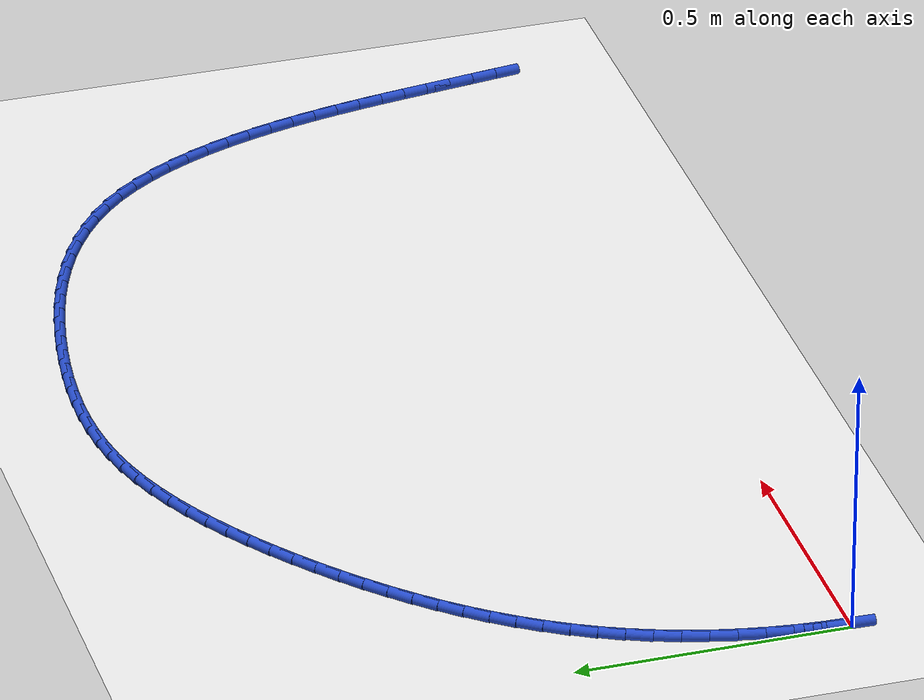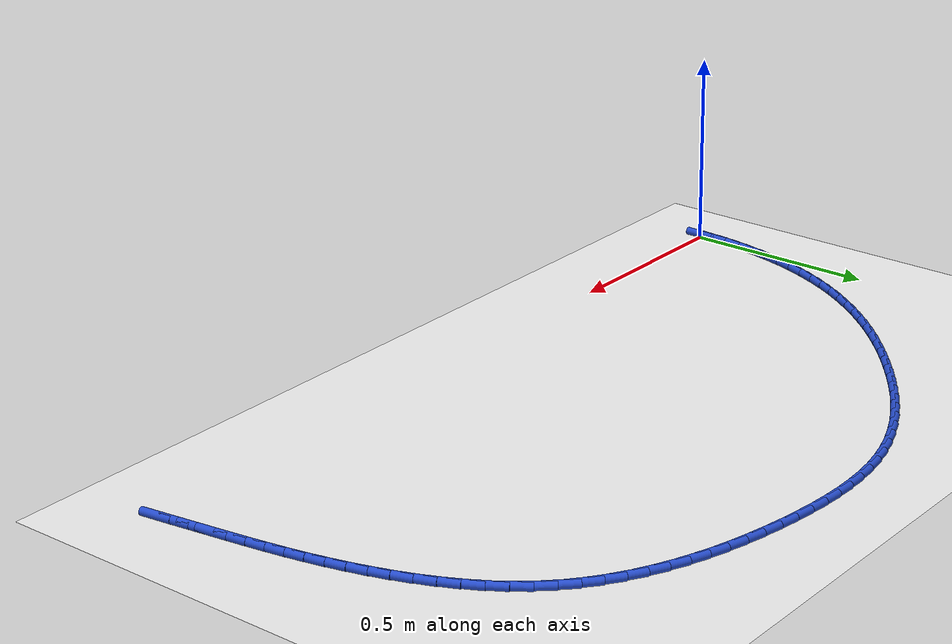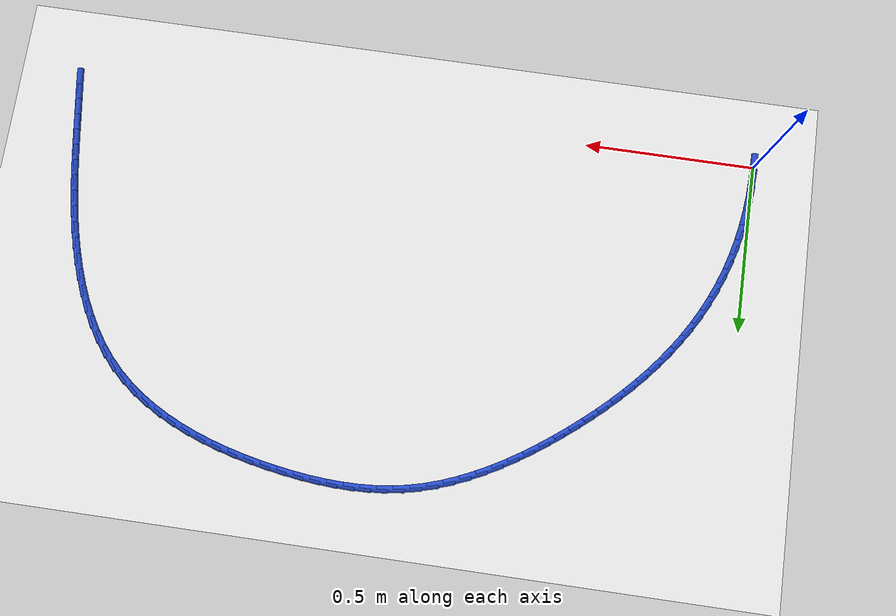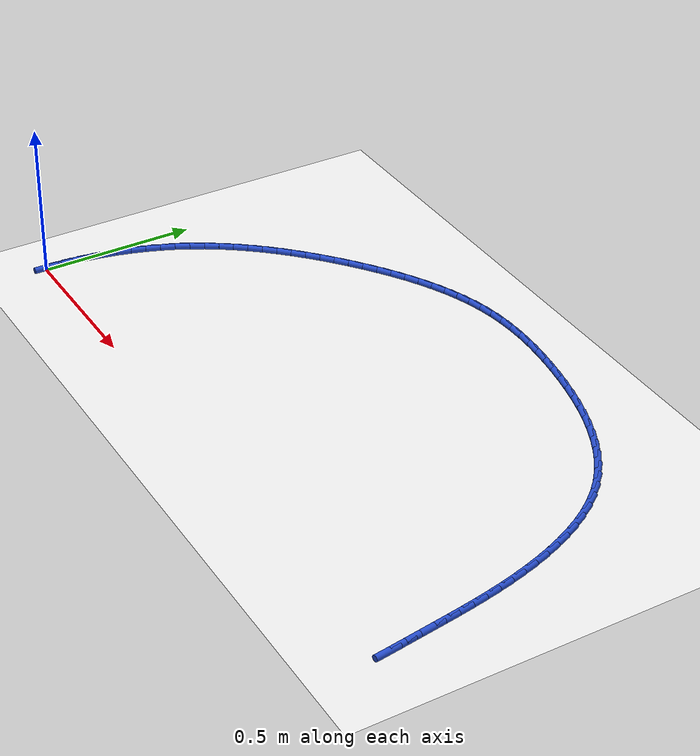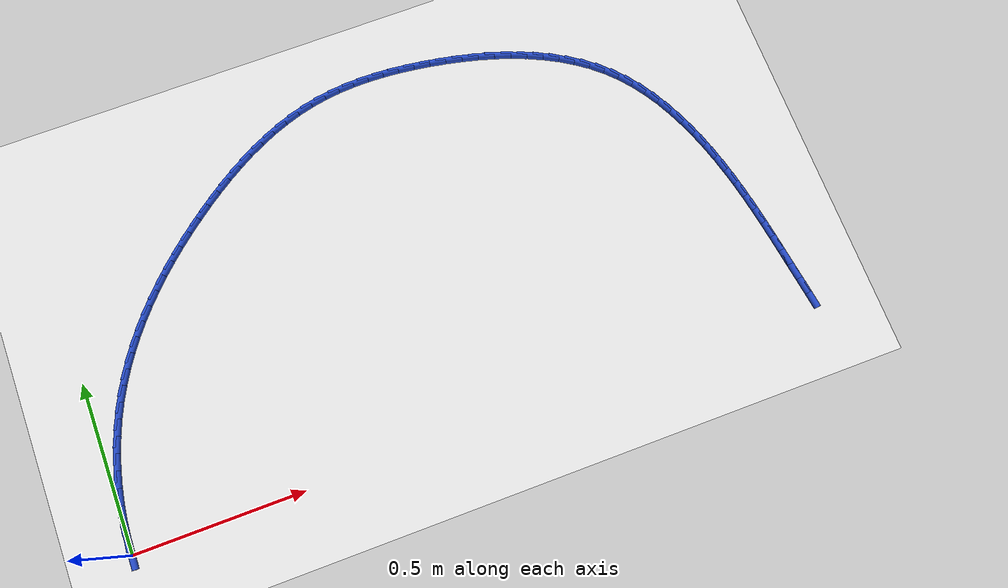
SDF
<sdf version="1.6">
 <world name="default">
  <model name="ground_plane">
   <static>1</static>
   <link name="link">
    <collision name="collision">
     <geometry><plane><normal>0 0 1</normal><size>100 100</size></plane></geometry>
     <surface><friction><ode><mu>100</mu><mu2>50</mu2></ode></friction></surface>
    </collision>
    <visual name="visual">
     <cast_shadows>0</cast_shadows>
     <geometry><plane><normal>0 0 1</normal><size>100 100</size></plane></geometry>
     <material>
      <script><uri>file://media/materials/scripts/gazebo.material</uri><name>Gazebo/WhiteGlow</name></script>
     </material>
    </visual>
   </link>
  </model>
  <model name="line">
   <link name="link_0">
    <pose>-1.3877787807814457e-17 -2.7755575615628914e-17 0.01 0 1.57 1.5439862479537985</pose>
    <collision name="collision">
     <geometry><cylinder><radius>0.01</radius><length>0.08</length></cylinder></geometry>
    </collision>
    <visual name="visual">
     <material>
      <script><name>Gazebo/Blue</name><uri>file://media/materials/scripts/gazebo.material</uri></script>
     </material>
     <geometry><cylinder><radius>0.01</radius><length>0.08</length></cylinder></geometry>
    </visual>
   </link>
   <link name="link_1">
    <pose>0.0013000955071772464 0.04848117029403217 0.01 0 1.57 1.49732978394675</pose>
    <collision name="collision">
     <geometry><cylinder><radius>0.01</radius><length>0.08</length></cylinder></geometry>
    </collision>
    <visual name="visual">
     <material>
      <script><name>Gazebo/Blue</name><uri>file://media/materials/scripts/gazebo.material</uri></script>
     </material>
     <geometry><cylinder><radius>0.01</radius><length>0.08</length></cylinder></geometry>
    </visual>
   </link>
   <link name="link_2">
    <pose>0.004854775804561397 0.0967791110049405 0.01 0 1.57 1.450515364279473</pose>
    <collision name="collision">
     <geometry><cylinder><radius>0.01</radius><length>0.08</length></cylinder></geometry>
    </collision>
    <visual name="visual">
     <material>
      <script><name>Gazebo/Blue</name><uri>file://media/materials/scripts/gazebo.material</uri></script>
     </material>
     <geometry><cylinder><radius>0.01</radius><length>0.08</length></cylinder></geometry>
    </visual>
   </link>
   <link name="link_3">
    <pose>0.010655439018264075 0.1447722626850268 0.01 0 1.57 1.403393478930387</pose>
    <collision name="collision">
     <geometry><cylinder><radius>0.01</radius><length>0.08</length></cylinder></geometry>
    </collision>
    <visual name="visual">
     <material>
      <script><name>Gazebo/Blue</name><uri>file://media/materials/scripts/gazebo.material</uri></script>
     </material>
     <geometry><cylinder><radius>0.01</radius><length>0.08</length></cylinder></geometry>
    </visual>
   </link>
   <link name="link_4">
    <pose>0.018693483274396905 0.1923390658865928 0.01 0 1.57 1.35581536525314</pose>
    <collision name="collision">
     <geometry><cylinder><radius>0.01</radius><length>0.08</length></cylinder></geometry>
    </collision>
    <visual name="visual">
     <material>
      <script><name>Gazebo/Blue</name><uri>file://media/materials/scripts/gazebo.material</uri></script>
     </material>
     <geometry><cylinder><radius>0.01</radius><length>0.08</length></cylinder></geometry>
    </visual>
   </link>
   <link name="link_5">
    <pose>0.028960306699071535 0.23935796116194058 0.01 0 1.57 1.3076344582694799</pose>
    <collision name="collision">
     <geometry><cylinder><radius>0.01</radius><length>0.08</length></cylinder></geometry>
    </collision>
    <visual name="visual">
     <material>
      <script><name>Gazebo/Blue</name><uri>file://media/materials/scripts/gazebo.material</uri></script>
     </material>
     <geometry><cylinder><radius>0.01</radius><length>0.08</length></cylinder></geometry>
    </visual>
   </link>
   <link name="link_6">
    <pose>0.041447307418399575 0.2857073890633719 0.01 0 1.57 1.2587081270434302</pose>
    <collision name="collision">
     <geometry><cylinder><radius>0.01</radius><length>0.08</length></cylinder></geometry>
    </collision>
    <visual name="visual">
     <material>
      <script><name>Gazebo/Blue</name><uri>file://media/materials/scripts/gazebo.material</uri></script>
     </material>
     <geometry><cylinder><radius>0.01</radius><length>0.08</length></cylinder></geometry>
    </visual>
   </link>
   <link name="link_7">
    <pose>0.056145883558492655 0.33126579014318835 0.01 0 1.57 1.2088997947003792</pose>
    <collision name="collision">
     <geometry><cylinder><radius>0.01</radius><length>0.08</length></cylinder></geometry>
    </collision>
    <visual name="visual">
     <material>
      <script><name>Gazebo/Blue</name><uri>file://media/materials/scripts/gazebo.material</uri></script>
     </material>
     <geometry><cylinder><radius>0.01</radius><length>0.08</length></cylinder></geometry>
    </visual>
   </link>
   <link name="link_8">
    <pose>0.07304743324546242 0.3759116049536922 0.01 0 1.57 1.158081530618101</pose>
    <collision name="collision">
     <geometry><cylinder><radius>0.01</radius><length>0.08</length></cylinder></geometry>
    </collision>
    <visual name="visual">
     <material>
      <script><name>Gazebo/Blue</name><uri>file://media/materials/scripts/gazebo.material</uri></script>
     </material>
     <geometry><cylinder><radius>0.01</radius><length>0.08</length></cylinder></geometry>
    </visual>
   </link>
   <link name="link_9">
    <pose>0.09214335460542052 0.4195232740471851 0.01 0 1.57 1.1063028263556682</pose>
    <collision name="collision">
     <geometry><cylinder><radius>0.01</radius><length>0.08</length></cylinder></geometry>
    </collision>
    <visual name="visual">
     <material>
      <script><name>Gazebo/Blue</name><uri>file://media/materials/scripts/gazebo.material</uri></script>
     </material>
     <geometry><cylinder><radius>0.01</radius><length>0.08</length></cylinder></geometry>
    </visual>
   </link>
   <link name="link_10">
    <pose>0.1134197853109428 0.46198629966658694 0.01 0 1.57 1.0554651047905392</pose>
    <collision name="collision">
     <geometry><cylinder><radius>0.01</radius><length>0.08</length></cylinder></geometry>
    </collision>
    <visual name="visual">
     <material>
      <script><name>Gazebo/Blue</name><uri>file://media/materials/scripts/gazebo.material</uri></script>
     </material>
     <geometry><cylinder><radius>0.01</radius><length>0.08</length></cylinder></geometry>
    </visual>
   </link>
   <link name="link_11">
    <pose>0.13680132337337977 0.503268795572125 0.01 0 1.57 1.0069436426508978</pose>
    <collision name="collision">
     <geometry><cylinder><radius>0.01</radius><length>0.08</length></cylinder></geometry>
    </collision>
    <visual name="visual">
     <material>
      <script><name>Gazebo/Blue</name><uri>file://media/materials/scripts/gazebo.material</uri></script>
     </material>
     <geometry><cylinder><radius>0.01</radius><length>0.08</length></cylinder></geometry>
    </visual>
   </link>
   <link name="link_12">
    <pose>0.1621726793115521 0.543392420932205 0.01 0 1.57 0.9608611292791025</pose>
    <collision name="collision">
     <geometry><cylinder><radius>0.01</radius><length>0.08</length></cylinder></geometry>
    </collision>
    <visual name="visual">
     <material>
      <script><name>Gazebo/Blue</name><uri>file://media/materials/scripts/gazebo.material</uri></script>
     </material>
     <geometry><cylinder><radius>0.01</radius><length>0.08</length></cylinder></geometry>
    </visual>
   </link>
   <link name="link_13">
    <pose>0.18941789051490968 0.5823797385314952 0.01 0 1.57 0.9172676235444962</pose>
    <collision name="collision">
     <geometry><cylinder><radius>0.01</radius><length>0.08</length></cylinder></geometry>
    </collision>
    <visual name="visual">
     <material>
      <script><name>Gazebo/Blue</name><uri>file://media/materials/scripts/gazebo.material</uri></script>
     </material>
     <geometry><cylinder><radius>0.01</radius><length>0.08</length></cylinder></geometry>
    </visual>
   </link>
   <link name="link_14">
    <pose>0.21842099437290244 0.6202533111546634 0.01 0 1.57 0.8761697022894857</pose>
    <collision name="collision">
     <geometry><cylinder><radius>0.01</radius><length>0.08</length></cylinder></geometry>
    </collision>
    <visual name="visual">
     <material>
      <script><name>Gazebo/Blue</name><uri>file://media/materials/scripts/gazebo.material</uri></script>
     </material>
     <geometry><cylinder><radius>0.01</radius><length>0.08</length></cylinder></geometry>
    </visual>
   </link>
   <link name="link_15">
    <pose>0.24906602827498026 0.6570357015863781 0.01 0 1.57 0.8375388492381575</pose>
    <collision name="collision">
     <geometry><cylinder><radius>0.01</radius><length>0.08</length></cylinder></geometry>
    </collision>
    <visual name="visual">
     <material>
      <script><name>Gazebo/Blue</name><uri>file://media/materials/scripts/gazebo.material</uri></script>
     </material>
     <geometry><cylinder><radius>0.01</radius><length>0.08</length></cylinder></geometry>
    </visual>
   </link>
   <link name="link_16">
    <pose>0.28123702961059305 0.6927494726113071 0.01 0 1.57 0.801319581556434</pose>
    <collision name="collision">
     <geometry><cylinder><radius>0.01</radius><length>0.08</length></cylinder></geometry>
    </collision>
    <visual name="visual">
     <material>
      <script><name>Gazebo/Blue</name><uri>file://media/materials/scripts/gazebo.material</uri></script>
     </material>
     <geometry><cylinder><radius>0.01</radius><length>0.08</length></cylinder></geometry>
    </visual>
   </link>
   <link name="link_17">
    <pose>0.31481803576919076 0.7274171870141186 0.01 0 1.57 0.767436859030929</pose>
    <collision name="collision">
     <geometry><cylinder><radius>0.01</radius><length>0.08</length></cylinder></geometry>
    </collision>
    <visual name="visual">
     <material>
      <script><name>Gazebo/Blue</name><uri>file://media/materials/scripts/gazebo.material</uri></script>
     </material>
     <geometry><cylinder><radius>0.01</radius><length>0.08</length></cylinder></geometry>
    </visual>
   </link>
   <link name="link_18">
    <pose>0.3496930841402231 0.7610614075794808 0.01 0 1.57 0.7358025313461442</pose>
    <collision name="collision">
     <geometry><cylinder><radius>0.01</radius><length>0.08</length></cylinder></geometry>
    </collision>
    <visual name="visual">
     <material>
      <script><name>Gazebo/Blue</name><uri>file://media/materials/scripts/gazebo.material</uri></script>
     </material>
     <geometry><cylinder><radius>0.01</radius><length>0.08</length></cylinder></geometry>
    </visual>
   </link>
   <link name="link_19">
    <pose>0.3857462121131401 0.7937046970920614 0.01 0 1.57 0.7063207410016091</pose>
    <collision name="collision">
     <geometry><cylinder><radius>0.01</radius><length>0.08</length></cylinder></geometry>
    </collision>
    <visual name="visual">
     <material>
      <script><name>Gazebo/Blue</name><uri>file://media/materials/scripts/gazebo.material</uri></script>
     </material>
     <geometry><cylinder><radius>0.01</radius><length>0.08</length></cylinder></geometry>
    </visual>
   </link>
   <link name="link_20">
    <pose>0.42286145707739187 0.8253696183365292 0.01 0 1.57 0.6788923109221581</pose>
    <collision name="collision">
     <geometry><cylinder><radius>0.01</radius><length>0.08</length></cylinder></geometry>
    </collision>
    <visual name="visual">
     <material>
      <script><name>Gazebo/Blue</name><uri>file://media/materials/scripts/gazebo.material</uri></script>
     </material>
     <geometry><cylinder><radius>0.01</radius><length>0.08</length></cylinder></geometry>
    </visual>
   </link>
   <link name="link_21">
    <pose>0.4609228564224279 0.8560787340975516 0.01 0 1.57 0.6528561740474497</pose>
    <collision name="collision">
     <geometry><cylinder><radius>0.01</radius><length>0.08</length></cylinder></geometry>
    </collision>
    <visual name="visual">
     <material>
      <script><name>Gazebo/Blue</name><uri>file://media/materials/scripts/gazebo.material</uri></script>
     </material>
     <geometry><cylinder><radius>0.01</radius><length>0.08</length></cylinder></geometry>
    </visual>
   </link>
   <link name="link_22">
    <pose>0.4998251105921384 0.8858281050375019 0.01 0 1.57 0.6246889999365038</pose>
    <collision name="collision">
     <geometry><cylinder><radius>0.01</radius><length>0.08</length></cylinder></geometry>
    </collision>
    <visual name="visual">
     <material>
      <script><name>Gazebo/Blue</name><uri>file://media/materials/scripts/gazebo.material</uri></script>
     </material>
     <geometry><cylinder><radius>0.01</radius><length>0.08</length></cylinder></geometry>
    </visual>
   </link>
   <link name="link_23">
    <pose>0.5395272795234832 0.9144538317279781 0.01 0 1.57 0.5929173329271502</pose>
    <collision name="collision">
     <geometry><cylinder><radius>0.01</radius><length>0.08</length></cylinder></geometry>
    </collision>
    <visual name="visual">
     <material>
      <script><name>Gazebo/Blue</name><uri>file://media/materials/scripts/gazebo.material</uri></script>
     </material>
     <geometry><cylinder><radius>0.01</radius><length>0.08</length></cylinder></geometry>
    </visual>
   </link>
   <link name="link_24">
    <pose>0.5800124497341687 0.9417322987009699 0.01 0 1.57 0.5572982903849244</pose>
    <collision name="collision">
     <geometry><cylinder><radius>0.01</radius><length>0.08</length></cylinder></geometry>
    </collision>
    <visual name="visual">
     <material>
      <script><name>Gazebo/Blue</name><uri>file://media/materials/scripts/gazebo.material</uri></script>
     </material>
     <geometry><cylinder><radius>0.01</radius><length>0.08</length></cylinder></geometry>
    </visual>
   </link>
   <link name="link_25">
    <pose>0.6212637490057964 0.9674397879305382 0.01 0 1.57 0.5175737755736487</pose>
    <collision name="collision">
     <geometry><cylinder><radius>0.01</radius><length>0.08</length></cylinder></geometry>
    </collision>
    <visual name="visual">
     <material>
      <script><name>Gazebo/Blue</name><uri>file://media/materials/scripts/gazebo.material</uri></script>
     </material>
     <geometry><cylinder><radius>0.01</radius><length>0.08</length></cylinder></geometry>
    </visual>
   </link>
   <link name="link_26">
    <pose>0.6632643051199675 0.991352581390743 0.01 0 1.57 0.4734816439089766</pose>
    <collision name="collision">
     <geometry><cylinder><radius>0.01</radius><length>0.08</length></cylinder></geometry>
    </collision>
    <visual name="visual">
     <material>
      <script><name>Gazebo/Blue</name><uri>file://media/materials/scripts/gazebo.material</uri></script>
     </material>
     <geometry><cylinder><radius>0.01</radius><length>0.08</length></cylinder></geometry>
    </visual>
   </link>
   <link name="link_27">
    <pose>0.7059972458582832 1.0132469610556454 0.01 0 1.57 0.42477475289719163</pose>
    <collision name="collision">
     <geometry><cylinder><radius>0.01</radius><length>0.08</length></cylinder></geometry>
    </collision>
    <visual name="visual">
     <material>
      <script><name>Gazebo/Blue</name><uri>file://media/materials/scripts/gazebo.material</uri></script>
     </material>
     <geometry><cylinder><radius>0.01</radius><length>0.08</length></cylinder></geometry>
    </visual>
   </link>
   <link name="link_28">
    <pose>0.7494456990023451 1.0328992088993056 0.01 0 1.57 0.3712470565876326</pose>
    <collision name="collision">
     <geometry><cylinder><radius>0.01</radius><length>0.08</length></cylinder></geometry>
    </collision>
    <visual name="visual">
     <material>
      <script><name>Gazebo/Blue</name><uri>file://media/materials/scripts/gazebo.material</uri></script>
     </material>
     <geometry><cylinder><radius>0.01</radius><length>0.08</length></cylinder></geometry>
    </visual>
   </link>
   <link name="link_29">
    <pose>0.7935927923337546 1.050085606895784 0.01 0 1.57 0.31276744081775637</pose>
    <collision name="collision">
     <geometry><cylinder><radius>0.01</radius><length>0.08</length></cylinder></geometry>
    </collision>
    <visual name="visual">
     <material>
      <script><name>Gazebo/Blue</name><uri>file://media/materials/scripts/gazebo.material</uri></script>
     </material>
     <geometry><cylinder><radius>0.01</radius><length>0.08</length></cylinder></geometry>
    </visual>
   </link>
   <link name="link_30">
    <pose>0.8384216536341128 1.0645824370191415 0.01 0 1.57 0.24932057655634146</pose>
    <collision name="collision">
     <geometry><cylinder><radius>0.01</radius><length>0.08</length></cylinder></geometry>
    </collision>
    <visual name="visual">
     <material>
      <script><name>Gazebo/Blue</name><uri>file://media/materials/scripts/gazebo.material</uri></script>
     </material>
     <geometry><cylinder><radius>0.01</radius><length>0.08</length></cylinder></geometry>
    </visual>
   </link>
   <link name="link_31">
    <pose>0.8839154106850214 1.0761659812434385 0.01 0 1.57 0.18257393777778924</pose>
    <collision name="collision">
     <geometry><cylinder><radius>0.01</radius><length>0.08</length></cylinder></geometry>
    </collision>
    <visual name="visual">
     <material>
      <script><name>Gazebo/Blue</name><uri>file://media/materials/scripts/gazebo.material</uri></script>
     </material>
     <geometry><cylinder><radius>0.01</radius><length>0.08</length></cylinder></geometry>
    </visual>
   </link>
   <link name="link_32">
    <pose>0.9300488244824214 1.0846835910959602 0.01 0 1.57 0.11912959833834877</pose>
    <collision name="collision">
     <geometry><cylinder><radius>0.01</radius><length>0.08</length></cylinder></geometry>
    </collision>
    <visual name="visual">
     <material>
      <script><name>Gazebo/Blue</name><uri>file://media/materials/scripts/gazebo.material</uri></script>
     </material>
     <geometry><cylinder><radius>0.01</radius><length>0.08</length></cylinder></geometry>
    </visual>
   </link>
   <link name="link_33">
    <pose>0.9767622328994956 1.090275016649207 0.01 0 1.57 0.060913125359275754</pose>
    <collision name="collision">
     <geometry><cylinder><radius>0.01</radius><length>0.08</length></cylinder></geometry>
    </collision>
    <visual name="visual">
     <material>
      <script><name>Gazebo/Blue</name><uri>file://media/materials/scripts/gazebo.material</uri></script>
     </material>
     <geometry><cylinder><radius>0.01</radius><length>0.08</length></cylinder></geometry>
    </visual>
   </link>
   <link name="link_34">
    <pose>1.023987122246294 1.093155195349033 0.01 0 1.57 0.00805282810111793</pose>
    <collision name="collision">
     <geometry><cylinder><radius>0.01</radius><length>0.08</length></cylinder></geometry>
    </collision>
    <visual name="visual">
     <material>
      <script><name>Gazebo/Blue</name><uri>file://media/materials/scripts/gazebo.material</uri></script>
     </material>
     <geometry><cylinder><radius>0.01</radius><length>0.08</length></cylinder></geometry>
    </visual>
   </link>
   <link name="link_35">
    <pose>1.071654978825745 1.093539064701777 0.01 0 1.57 -0.039475968621177415</pose>
    <collision name="collision">
     <geometry><cylinder><radius>0.01</radius><length>0.08</length></cylinder></geometry>
    </collision>
    <visual name="visual">
     <material>
      <script><name>Gazebo/Blue</name><uri>file://media/materials/scripts/gazebo.material</uri></script>
     </material>
     <geometry><cylinder><radius>0.01</radius><length>0.08</length></cylinder></geometry>
    </visual>
   </link>
   <link name="link_36">
    <pose>1.1196972889407786 1.091641562213777 0.01 0 1.57 -0.08180421731407035</pose>
    <collision name="collision">
     <geometry><cylinder><radius>0.01</radius><length>0.08</length></cylinder></geometry>
    </collision>
    <visual name="visual">
     <material>
      <script><name>Gazebo/Blue</name><uri>file://media/materials/scripts/gazebo.material</uri></script>
     </material>
     <geometry><cylinder><radius>0.01</radius><length>0.08</length></cylinder></geometry>
    </visual>
   </link>
   <link name="link_37">
    <pose>1.1680455388943238 1.0876776253913716 0.01 0 1.57 -0.11912765942808072</pose>
    <collision name="collision">
     <geometry><cylinder><radius>0.01</radius><length>0.08</length></cylinder></geometry>
    </collision>
    <visual name="visual">
     <material>
      <script><name>Gazebo/Blue</name><uri>file://media/materials/scripts/gazebo.material</uri></script>
     </material>
     <geometry><cylinder><radius>0.01</radius><length>0.08</length></cylinder></geometry>
    </visual>
   </link>
   <link name="link_38">
    <pose>1.2166312149893093 1.081862191740899 0.01 0 1.57 -0.15167389560832728</pose>
    <collision name="collision">
     <geometry><cylinder><radius>0.01</radius><length>0.08</length></cylinder></geometry>
    </collision>
    <visual name="visual">
     <material>
      <script><name>Gazebo/Blue</name><uri>file://media/materials/scripts/gazebo.material</uri></script>
     </material>
     <geometry><cylinder><radius>0.01</radius><length>0.08</length></cylinder></geometry>
    </visual>
   </link>
   <link name="link_39">
    <pose>1.2653857844287881 1.0744101638715478 0.01 0 1.57 -0.1812845392434964</pose>
    <collision name="collision">
     <geometry><cylinder><radius>0.01</radius><length>0.08</length></cylinder></geometry>
    </collision>
    <visual name="visual">
     <material>
      <script><name>Gazebo/Blue</name><uri>file://media/materials/scripts/gazebo.material</uri></script>
     </material>
     <geometry><cylinder><radius>0.01</radius><length>0.08</length></cylinder></geometry>
    </visual>
   </link>
   <link name="link_40">
    <pose>1.3142003050210591 1.065462612882846 0.01 0 1.57 -0.21323153890450583</pose>
    <collision name="collision">
     <geometry><cylinder><radius>0.01</radius><length>0.08</length></cylinder></geometry>
    </collision>
    <visual name="visual">
     <material>
      <script><name>Gazebo/Blue</name><uri>file://media/materials/scripts/gazebo.material</uri></script>
     </material>
     <geometry><cylinder><radius>0.01</radius><length>0.08</length></cylinder></geometry>
    </visual>
   </link>
   <link name="link_41">
    <pose>1.3628401442285534 1.0549309625845849 0.01 0 1.57 -0.2488271544679976</pose>
    <collision name="collision">
     <geometry><cylinder><radius>0.01</radius><length>0.08</length></cylinder></geometry>
    </collision>
    <visual name="visual">
     <material>
      <script><name>Gazebo/Blue</name><uri>file://media/materials/scripts/gazebo.material</uri></script>
     </material>
     <geometry><cylinder><radius>0.01</radius><length>0.08</length></cylinder></geometry>
    </visual>
   </link>
   <link name="link_42">
    <pose>1.4110463025242534 1.0426821161589201 0.01 0 1.57 -0.28846309744115495</pose>
    <collision name="collision">
     <geometry><cylinder><radius>0.01</radius><length>0.08</length></cylinder></geometry>
    </collision>
    <visual name="visual">
     <material>
      <script><name>Gazebo/Blue</name><uri>file://media/materials/scripts/gazebo.material</uri></script>
     </material>
     <geometry><cylinder><radius>0.01</radius><length>0.08</length></cylinder></geometry>
    </visual>
   </link>
   <link name="link_43">
    <pose>1.4585597803811412 1.028582976788006 0.01 0 1.57 -0.3325725751890111</pose>
    <collision name="collision">
     <geometry><cylinder><radius>0.01</radius><length>0.08</length></cylinder></geometry>
    </collision>
    <visual name="visual">
     <material>
      <script><name>Gazebo/Blue</name><uri>file://media/materials/scripts/gazebo.material</uri></script>
     </material>
     <geometry><cylinder><radius>0.01</radius><length>0.08</length></cylinder></geometry>
    </visual>
   </link>
   <link name="link_44">
    <pose>1.5051215782722 1.0125004476539972 0.01 0 1.57 -0.38161919347276557</pose>
    <collision name="collision">
     <geometry><cylinder><radius>0.01</radius><length>0.08</length></cylinder></geometry>
    </collision>
    <visual name="visual">
     <material>
      <script><name>Gazebo/Blue</name><uri>file://media/materials/scripts/gazebo.material</uri></script>
     </material>
     <geometry><cylinder><radius>0.01</radius><length>0.08</length></cylinder></geometry>
    </visual>
   </link>
   <link name="link_45">
    <pose>1.5504726966704117 0.994301431939048 0.01 0 1.57 -0.4360767356400772</pose>
    <collision name="collision">
     <geometry><cylinder><radius>0.01</radius><length>0.08</length></cylinder></geometry>
    </collision>
    <visual name="visual">
     <material>
      <script><name>Gazebo/Blue</name><uri>file://media/materials/scripts/gazebo.material</uri></script>
     </material>
     <geometry><cylinder><radius>0.01</radius><length>0.08</length></cylinder></geometry>
    </visual>
   </link>
   <link name="link_46">
    <pose>1.5943541360487585 0.9738528328253133 0.01 0 1.57 -0.49639586184257994</pose>
    <collision name="collision">
     <geometry><cylinder><radius>0.01</radius><length>0.08</length></cylinder></geometry>
    </collision>
    <visual name="visual">
     <material>
      <script><name>Gazebo/Blue</name><uri>file://media/materials/scripts/gazebo.material</uri></script>
     </material>
     <geometry><cylinder><radius>0.01</radius><length>0.08</length></cylinder></geometry>
    </visual>
   </link>
   <link name="link_47">
    <pose>1.6365068968802234 0.9510215534949483 0.01 0 1.57 -0.5629537376569442</pose>
    <collision name="collision">
     <geometry><cylinder><radius>0.01</radius><length>0.08</length></cylinder></geometry>
    </collision>
    <visual name="visual">
     <material>
      <script><name>Gazebo/Blue</name><uri>file://media/materials/scripts/gazebo.material</uri></script>
     </material>
     <geometry><cylinder><radius>0.01</radius><length>0.08</length></cylinder></geometry>
    </visual>
   </link>
   <link name="link_48">
    <pose>1.676671979637788 0.9256744971301065 0.01 0 1.57 -0.6359841325285005</pose>
    <collision name="collision">
     <geometry><cylinder><radius>0.01</radius><length>0.08</length></cylinder></geometry>
    </collision>
    <visual name="visual">
     <material>
      <script><name>Gazebo/Blue</name><uri>file://media/materials/scripts/gazebo.material</uri></script>
     </material>
     <geometry><cylinder><radius>0.01</radius><length>0.08</length></cylinder></geometry>
    </visual>
   </link>
   <link name="link_49">
    <pose>1.714590384794435 0.8976785669129436 0.01 0 1.57 -0.7154898642995443</pose>
    <collision name="collision">
     <geometry><cylinder><radius>0.01</radius><length>0.08</length></cylinder></geometry>
    </collision>
    <visual name="visual">
     <material>
      <script><name>Gazebo/Blue</name><uri>file://media/materials/scripts/gazebo.material</uri></script>
     </material>
     <geometry><cylinder><radius>0.01</radius><length>0.08</length></cylinder></geometry>
    </visual>
   </link>
   <link name="link_50">
    <pose>1.750003112823147 0.8669006660256134 0.01 0 1.57 -0.8010830907051544</pose>
    <collision name="collision">
     <geometry><cylinder><radius>0.01</radius><length>0.08</length></cylinder></geometry>
    </collision>
    <visual name="visual">
     <material>
      <script><name>Gazebo/Blue</name><uri>file://media/materials/scripts/gazebo.material</uri></script>
     </material>
     <geometry><cylinder><radius>0.01</radius><length>0.08</length></cylinder></geometry>
    </visual>
   </link>
   <link name="link_51">
    <pose>1.7826530891976295 0.8332100570532648 0.01 0 1.57 -0.8872848594665548</pose>
    <collision name="collision">
     <geometry><cylinder><radius>0.01</radius><length>0.08</length></cylinder></geometry>
    </collision>
    <visual name="visual">
     <material>
      <script><name>Gazebo/Blue</name><uri>file://media/materials/scripts/gazebo.material</uri></script>
     </material>
     <geometry><cylinder><radius>0.01</radius><length>0.08</length></cylinder></geometry>
    </visual>
   </link>
   <link name="link_52">
    <pose>1.8124279688652252 0.7966533922044512 0.01 0 1.57 -0.9656628378489084</pose>
    <collision name="collision">
     <geometry><cylinder><radius>0.01</radius><length>0.08</length></cylinder></geometry>
    </collision>
    <visual name="visual">
     <material>
      <script><name>Gazebo/Blue</name><uri>file://media/materials/scripts/gazebo.material</uri></script>
     </material>
     <geometry><cylinder><radius>0.01</radius><length>0.08</length></cylinder></geometry>
    </visual>
   </link>
   <link name="link_53">
    <pose>1.8394583853857267 0.7575751336878254 0.01 0 1.57 -1.0356783595167642</pose>
    <collision name="collision">
     <geometry><cylinder><radius>0.01</radius><length>0.08</length></cylinder></geometry>
    </collision>
    <visual name="visual">
     <material>
      <script><name>Gazebo/Blue</name><uri>file://media/materials/scripts/gazebo.material</uri></script>
     </material>
     <geometry><cylinder><radius>0.01</radius><length>0.08</length></cylinder></geometry>
    </visual>
   </link>
   <link name="link_54">
    <pose>1.8638982161848177 0.7163482328684839 0.01 0 1.57 -1.097856614247655</pose>
    <collision name="collision">
     <geometry><cylinder><radius>0.01</radius><length>0.08</length></cylinder></geometry>
    </collision>
    <visual name="visual">
     <material>
      <script><name>Gazebo/Blue</name><uri>file://media/materials/scripts/gazebo.material</uri></script>
     </material>
     <geometry><cylinder><radius>0.01</radius><length>0.08</length></cylinder></geometry>
    </visual>
   </link>
   <link name="link_55">
    <pose>1.8859013386881784 0.6733456411115235 0.01 0 1.57 -1.1528618450016284</pose>
    <collision name="collision">
     <geometry><cylinder><radius>0.01</radius><length>0.08</length></cylinder></geometry>
    </collision>
    <visual name="visual">
     <material>
      <script><name>Gazebo/Blue</name><uri>file://media/materials/scripts/gazebo.material</uri></script>
     </material>
     <geometry><cylinder><radius>0.01</radius><length>0.08</length></cylinder></geometry>
    </visual>
   </link>
   <link name="link_56">
    <pose>1.905621630321493 0.6289403097820422 0.01 0 1.57 -1.201394719967363</pose>
    <collision name="collision">
     <geometry><cylinder><radius>0.01</radius><length>0.08</length></cylinder></geometry>
    </collision>
    <visual name="visual">
     <material>
      <script><name>Gazebo/Blue</name><uri>file://media/materials/scripts/gazebo.material</uri></script>
     </material>
     <geometry><cylinder><radius>0.01</radius><length>0.08</length></cylinder></geometry>
    </visual>
   </link>
   <link name="link_57">
    <pose>1.9232129685104424 0.5835051902451361 0.01 0 1.57 -1.244127885930229</pose>
    <collision name="collision">
     <geometry><cylinder><radius>0.01</radius><length>0.08</length></cylinder></geometry>
    </collision>
    <visual name="visual">
     <material>
      <script><name>Gazebo/Blue</name><uri>file://media/materials/scripts/gazebo.material</uri></script>
     </material>
     <geometry><cylinder><radius>0.01</radius><length>0.08</length></cylinder></geometry>
    </visual>
   </link>
   <link name="link_58">
    <pose>1.9388292306807102 0.5374132338659031 0.01 0 1.57 -1.2816702100760788</pose>
    <collision name="collision">
     <geometry><cylinder><radius>0.01</radius><length>0.08</length></cylinder></geometry>
    </collision>
    <visual name="visual">
     <material>
      <script><name>Gazebo/Blue</name><uri>file://media/materials/scripts/gazebo.material</uri></script>
     </material>
     <geometry><cylinder><radius>0.01</radius><length>0.08</length></cylinder></geometry>
    </visual>
   </link>
   <link name="link_59">
    <pose>1.9526243485189254 0.4910370620126329 0.01 0 1.57 -1.3147629024589147</pose>
    <collision name="collision">
     <geometry><cylinder><radius>0.01</radius><length>0.08</length></cylinder></geometry>
    </collision>
    <visual name="visual">
     <material>
      <script><name>Gazebo/Blue</name><uri>file://media/materials/scripts/gazebo.material</uri></script>
     </material>
     <geometry><cylinder><radius>0.01</radius><length>0.08</length></cylinder></geometry>
    </visual>
   </link>
   <link name="link_60">
    <pose>1.9647704164333546 0.4446388365008921 0.01 0 1.57 -1.3440114351240888</pose>
    <collision name="collision">
     <geometry><cylinder><radius>0.01</radius><length>0.08</length></cylinder></geometry>
    </collision>
    <visual name="visual">
     <material>
      <script><name>Gazebo/Blue</name><uri>file://media/materials/scripts/gazebo.material</uri></script>
     </material>
     <geometry><cylinder><radius>0.01</radius><length>0.08</length></cylinder></geometry>
    </visual>
   </link>
   <link name="link_61">
    <pose>1.9754839486207705 0.3982105729605267 0.01 0 1.57 -1.3692111294587208</pose>
    <collision name="collision">
     <geometry><cylinder><radius>0.01</radius><length>0.08</length></cylinder></geometry>
    </collision>
    <visual name="visual">
     <material>
      <script><name>Gazebo/Blue</name><uri>file://media/materials/scripts/gazebo.material</uri></script>
     </material>
     <geometry><cylinder><radius>0.01</radius><length>0.08</length></cylinder></geometry>
    </visual>
   </link>
   <link name="link_62">
    <pose>1.9849881238591265 0.3517037552844068 0.01 0 1.57 -1.3901311577646343</pose>
    <collision name="collision">
     <geometry><cylinder><radius>0.01</radius><length>0.08</length></cylinder></geometry>
    </collision>
    <visual name="visual">
     <material>
      <script><name>Gazebo/Blue</name><uri>file://media/materials/scripts/gazebo.material</uri></script>
     </material>
     <geometry><cylinder><radius>0.01</radius><length>0.08</length></cylinder></geometry>
    </visual>
   </link>
   <link name="link_63">
    <pose>1.9935061209263756 0.30506986736540104 0.01 0 1.57 -1.4066160370039393</pose>
    <collision name="collision">
     <geometry><cylinder><radius>0.01</radius><length>0.08</length></cylinder></geometry>
    </collision>
    <visual name="visual">
     <material>
      <script><name>Gazebo/Blue</name><uri>file://media/materials/scripts/gazebo.material</uri></script>
     </material>
     <geometry><cylinder><radius>0.01</radius><length>0.08</length></cylinder></geometry>
    </visual>
   </link>
   <link name="link_64">
    <pose>2.0012611186004707 0.25826039309637966 0.01 0 1.57 -1.4185781630623908</pose>
    <collision name="collision">
     <geometry><cylinder><radius>0.01</radius><length>0.08</length></cylinder></geometry>
    </collision>
    <visual name="visual">
     <material>
      <script><name>Gazebo/Blue</name><uri>file://media/materials/scripts/gazebo.material</uri></script>
     </material>
     <geometry><cylinder><radius>0.01</radius><length>0.08</length></cylinder></geometry>
    </visual>
   </link>
   <link name="link_65">
    <pose>2.0084762956593654 0.2112268163702114 0.01 0 1.57 -1.4259897261282055</pose>
    <collision name="collision">
     <geometry><cylinder><radius>0.01</radius><length>0.08</length></cylinder></geometry>
    </collision>
    <visual name="visual">
     <material>
      <script><name>Gazebo/Blue</name><uri>file://media/materials/scripts/gazebo.material</uri></script>
     </material>
     <geometry><cylinder><radius>0.01</radius><length>0.08</length></cylinder></geometry>
    </visual>
   </link>
   <link name="link_66">
    <pose>2.015374830881012 0.1639206210797652 0.01 0 1.57 -1.428875241439571</pose>
    <collision name="collision">
     <geometry><cylinder><radius>0.01</radius><length>0.08</length></cylinder></geometry>
    </collision>
    <visual name="visual">
     <material>
      <script><name>Gazebo/Blue</name><uri>file://media/materials/scripts/gazebo.material</uri></script>
     </material>
     <geometry><cylinder><radius>0.01</radius><length>0.08</length></cylinder></geometry>
    </visual>
   </link>
   <link name="link_67">
    <pose>2.0221799030433627 0.11629329111791126 0.01 0 1.57 -1.4278936932090165</pose>
    <collision name="collision">
     <geometry><cylinder><radius>0.01</radius><length>0.08</length></cylinder></geometry>
    </collision>
    <visual name="visual">
     <material>
      <script><name>Gazebo/Blue</name><uri>file://media/materials/scripts/gazebo.material</uri></script>
     </material>
     <geometry><cylinder><radius>0.01</radius><length>0.08</length></cylinder></geometry>
    </visual>
   </link>
   <link name="link_68">
    <pose>2.029084638742576 0.06830487757687012 0.01 0 1.57 -1.4292632639746832</pose>
    <collision name="collision">
     <geometry><cylinder><radius>0.01</radius><length>0.08</length></cylinder></geometry>
    </collision>
    <visual name="visual">
     <material>
      <script><name>Gazebo/Blue</name><uri>file://media/materials/scripts/gazebo.material</uri></script>
     </material>
     <geometry><cylinder><radius>0.01</radius><length>0.08</length></cylinder></geometry>
    </visual>
   </link>
   <link name="link_69">
    <pose>2.035966627931326 0.020005383930556397 0.01 0 1.57 -1.436611068628378</pose>
    <collision name="collision">
     <geometry><cylinder><radius>0.01</radius><length>0.08</length></cylinder></geometry>
    </collision>
    <visual name="visual">
     <material>
      <script><name>Gazebo/Blue</name><uri>file://media/materials/scripts/gazebo.material</uri></script>
     </material>
     <geometry><cylinder><radius>0.01</radius><length>0.08</length></cylinder></geometry>
    </visual>
   </link>
   <link name="link_141">
    <pose>0.0012990626617938456 0.04847456400833914 0.01 0 1.57 1.5440038875842506</pose>
    <collision name="collision">
     <geometry><cylinder><radius>0.01</radius><length>0.08</length></cylinder></geometry>
    </collision>
    <visual name="visual">
     <material>
      <script><name>Gazebo/Blue</name><uri>file://media/materials/scripts/gazebo.material</uri></script>
     </material>
     <geometry><cylinder><radius>0.01</radius><length>0.08</length></cylinder></geometry>
    </visual>
   </link>
  </model>
 </world>
</sdf>
